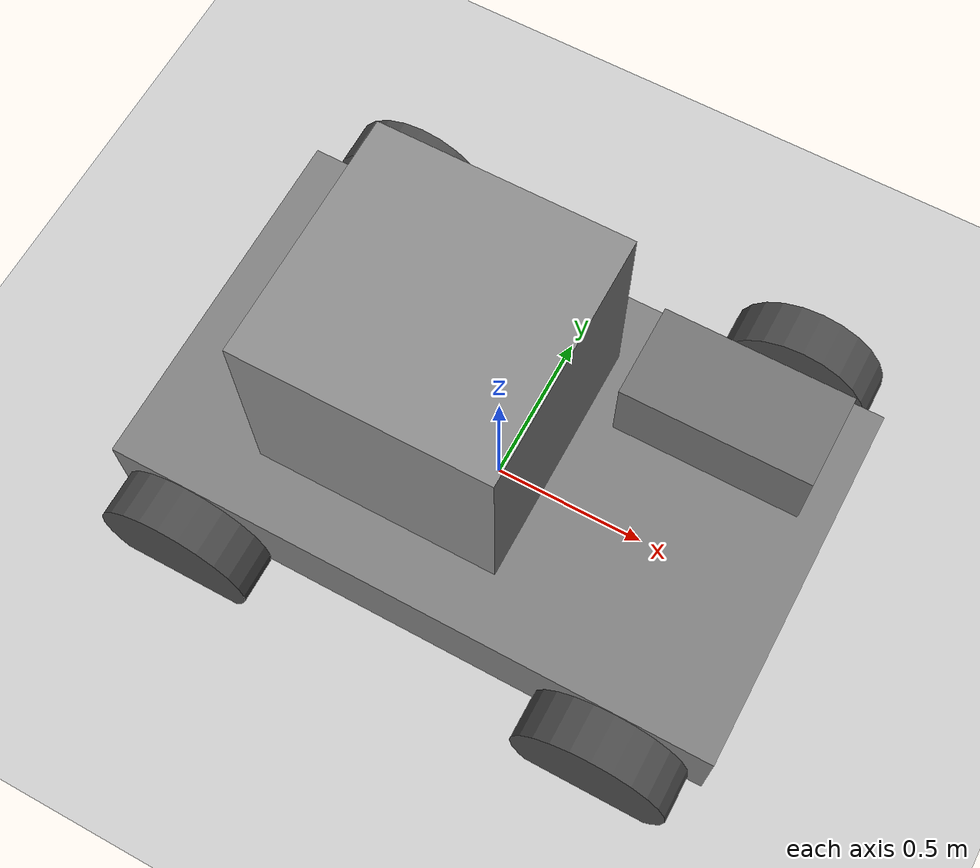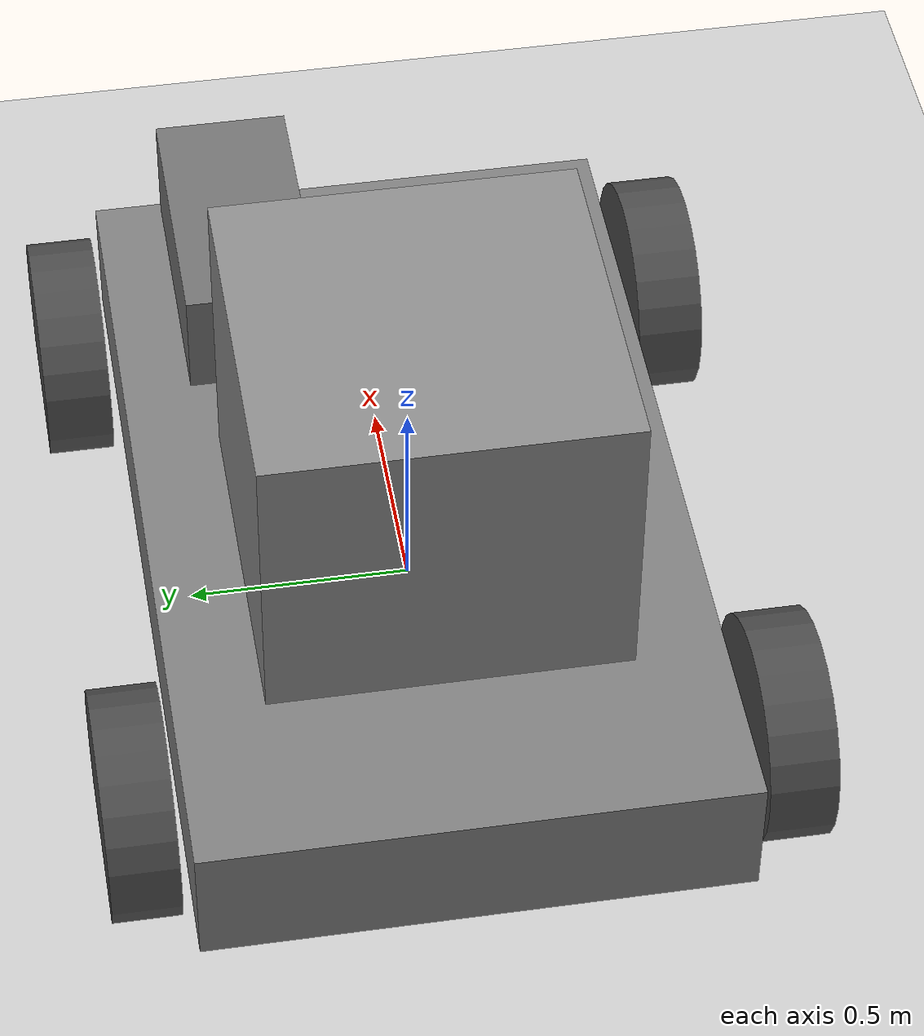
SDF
<?xml version="1.0"?>
<sdf version="1.6">
  <world name="vehicle_test_world">

    <!-- Physics settings -->
    <physics type="ode">
      <max_step_size>0.001</max_step_size>
      <real_time_factor>1</real_time_factor>
      <real_time_update_rate>1000</real_time_update_rate>
    </physics>

    <!-- Simple light source -->
    <light type="directional" name="sun">
      <cast_shadows>true</cast_shadows>
      <pose>0 0 10 0 0 0</pose>
      <diffuse>0.8 0.8 0.8 1</diffuse>
      <specular>0.2 0.2 0.2 1</specular>
      <attenuation>
        <range>1000</range>
        <constant>0.9</constant>
        <linear>0.01</linear>
        <quadratic>0.001</quadratic>
      </attenuation>
      <direction>-0.5 0.1 -0.9</direction>
    </light>

    <!-- Simple ground plane -->
    <model name="ground_plane">
      <static>true</static>
      <link name="link">
        <collision name="collision">
          <geometry>
            <plane>
              <normal>0 0 1</normal>
              <size>100 100</size>
            </plane>
          </geometry>
        </collision>
        <visual name="visual">
          <geometry>
            <plane>
              <normal>0 0 1</normal>
              <size>100 100</size>
            </plane>
          </geometry>
          <material>
            <ambient>0.8 0.8 0.8 1</ambient>
            <diffuse>0.8 0.8 0.8 1</diffuse>
            <specular>0 0 0 1</specular>
          </material>
        </visual>
      </link>
    </model>

    <!-- The simple vehicle model -->
    <include>
      <uri>model://simple_vehicle</uri>
      <name>test_vehicle</name>
      <pose>0 0 0 0 0 0</pose>
    </include>

    <!-- Camera view -->
    <gui fullscreen='0'>
      <camera name='user_camera'>
        <pose>5.0 -5.0 3.0 0 0.3 2.356</pose>
        <view_controller>orbit</view_controller>
      </camera>
    </gui>

  </world>
</sdf>

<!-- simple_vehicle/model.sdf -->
<sdf version="1.6">
  <model name="simple_vehicle">
    <static>true</static>

    <!-- Base Platform -->
    <link name="base_platform">
      <pose>0 0 0.15 0 0 0</pose>
      <collision name="base_collision">
        <geometry>
          <box>
            <size>2.0 1.2 0.3</size>
          </box>
        </geometry>
      </collision>
      <visual name="base_visual">
        <geometry>
          <box>
            <size>2.0 1.2 0.3</size>
          </box>
        </geometry>
        <material>
          <ambient>0.5 0.5 0.5 1</ambient>
          <diffuse>0.5 0.5 0.5 1</diffuse>
          <specular>0.1 0.1 0.1 1</specular>
        </material>
      </visual>
    </link>

    <!-- Front Left Wheel -->
    <link name="wheel_front_left">
      <pose>0.7 0.7 0.15 1.5708 0 0</pose>
      <collision name="wheel_front_left_collision">
        <geometry>
          <cylinder>
            <radius>0.25</radius>
            <length>0.15</length>
          </cylinder>
        </geometry>
      </collision>
      <visual name="wheel_front_left_visual">
        <geometry>
          <cylinder>
            <radius>0.25</radius>
            <length>0.15</length>
          </cylinder>
        </geometry>
        <material>
          <ambient>0.3 0.3 0.3 1</ambient>
          <diffuse>0.3 0.3 0.3 1</diffuse>
          <specular>0.1 0.1 0.1 1</specular>
        </material>
      </visual>
    </link>

    <!-- Front Right Wheel -->
    <link name="wheel_front_right">
      <pose>0.7 -0.7 0.15 1.5708 0 0</pose>
      <collision name="wheel_front_right_collision">
        <geometry>
          <cylinder>
            <radius>0.25</radius>
            <length>0.15</length>
          </cylinder>
        </geometry>
      </collision>
      <visual name="wheel_front_right_visual">
        <geometry>
          <cylinder>
            <radius>0.25</radius>
            <length>0.15</length>
          </cylinder>
        </geometry>
        <material>
          <ambient>0.3 0.3 0.3 1</ambient>
          <diffuse>0.3 0.3 0.3 1</diffuse>
          <specular>0.1 0.1 0.1 1</specular>
        </material>
      </visual>
    </link>

    <!-- Rear Left Wheel -->
    <link name="wheel_rear_left">
      <pose>-0.7 0.7 0.15 1.5708 0 0</pose>
      <collision name="wheel_rear_left_collision">
        <geometry>
          <cylinder>
            <radius>0.25</radius>
            <length>0.15</length>
          </cylinder>
        </geometry>
      </collision>
      <visual name="wheel_rear_left_visual">
        <geometry>
          <cylinder>
            <radius>0.25</radius>
            <length>0.15</length>
          </cylinder>
        </geometry>
        <material>
          <ambient>0.3 0.3 0.3 1</ambient>
          <diffuse>0.3 0.3 0.3 1</diffuse>
          <specular>0.1 0.1 0.1 1</specular>
        </material>
      </visual>
    </link>

    <!-- Rear Right Wheel -->
    <link name="wheel_rear_right">
      <pose>-0.7 -0.7 0.15 1.5708 0 0</pose>
      <collision name="wheel_rear_right_collision">
        <geometry>
          <cylinder>
            <radius>0.25</radius>
            <length>0.15</length>
          </cylinder>
        </geometry>
      </collision>
      <visual name="wheel_rear_right_visual">
        <geometry>
          <cylinder>
            <radius>0.25</radius>
            <length>0.15</length>
          </cylinder>
        </geometry>
        <material>
          <ambient>0.3 0.3 0.3 1</ambient>
          <diffuse>0.3 0.3 0.3 1</diffuse>
          <specular>0.1 0.1 0.1 1</specular>
        </material>
      </visual>
    </link>

    <!-- Main Body Block -->
    <link name="main_body">
      <pose>-0.2 0 0.65 0 0 0</pose>
      <collision name="main_body_collision">
        <geometry>
          <box>
            <size>0.8 0.8 0.7</size>
          </box>
        </geometry>
      </collision>
      <visual name="main_body_visual">
        <geometry>
          <box>
            <size>0.8 0.8 0.7</size>
          </box>
        </geometry>
        <material>
          <ambient>0.55 0.55 0.55 1</ambient>
          <diffuse>0.55 0.55 0.55 1</diffuse>
          <specular>0.2 0.2 0.2 1</specular>
        </material>
      </visual>
    </link>

    <!-- Turret/Cargo Box -->
    <link name="turret">
      <pose>0.6 0.3 0.5 0 0 0</pose>
      <collision name="turret_collision">
        <geometry>
          <box>
            <size>0.6 0.3 0.25</size>
          </box>
        </geometry>
      </collision>
      <visual name="turret_visual">
        <geometry>
          <box>
            <size>0.6 0.3 0.25</size>
          </box>
        </geometry>
        <material>
          <ambient>0.45 0.45 0.45 1</ambient>
          <diffuse>0.45 0.45 0.45 1</diffuse>
          <specular>0.15 0.15 0.15 1</specular>
        </material>
      </visual>
    </link>

  </model>
</sdf>
